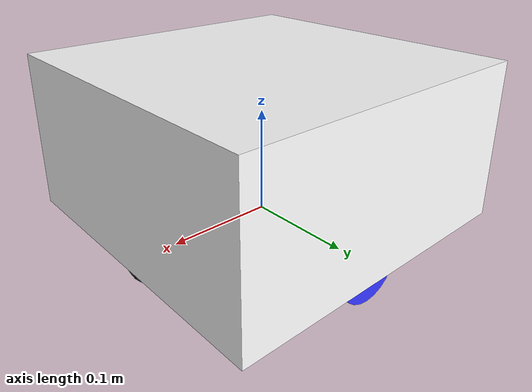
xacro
<?xml version="1.0"?>
<robot xmlns:xacro="http://ros.org/wiki/xacro" name="oogway">

    <xacro:include filename="inertial_macros.xacro"/>

    <material name= "white">
        <color rgba = "1 1 1 1"/>
    </material>

    <material name= "orange">
        <color rgba = "1 0.3 0.1 1"/>
    </material>

    <material name= "blue">
        <color rgba = "0.2 0.2 1 1"/>
    </material>

    <material name= "black">
        <color rgba = "0 0 0 1"/>
    </material>

    <!--BASE LINK-->

    <link name= "base_link">

    </link>

    <!--CHASSIS LINK-->

    <joint name= "chassis_joint" type="fixed">
        <parent link="base_link"/>
        <child link="chassis"/>
        <origin xyz="0 0 0"/>
    </joint>

    <link name= "chassis">
        <visual>
            <origin xyz= "0 0 0.075"/>
            <geometry>
                <box size="0.3 0.3 0.15"/>
            </geometry>
            <material name= "white"/>
        </visual>
        <collision>
            <origin xyz= "0 0 0.075"/>
            <geometry>
                <box size="0.3 0.3 0.15"/>
            </geometry>
        </collision>
        <xacro:inertial_box mass="0.5" x="0.3" y="0.3" z="0.15">
            <origin xyz= "0 0 0.075"/>
        </xacro:inertial_box>
    </link>

    <gazebo reference="chassis">
        <material>Gazebo/White</material>
    </gazebo>

    <!--LEFT WHEEL LINK-->

    <joint name="left_wheel_joint" type="continuous">
        <parent link= "base_link"/>
        <child link="left_wheel"/>
        <origin xyz="0 0.12 0" rpy="-${pi/2} 0 0"/>
        <axis xyz="0 0 1"/>
    </joint>

    <link name="left_wheel">
        <visual>
            <geometry>
                <cylinder radius="0.034" length="0.027"/>
            </geometry>
            <material name= "blue"/>
        </visual>
        <collision>
            <geometry>
                <cylinder radius="0.034" length="0.027"/>
            </geometry>
        </collision>
        <xacro:inertial_cylinder mass="0.1" radius="0.034" length="0.027">
            <origin xyz= "0 0 0" rpy="0 0 0"/>
        </xacro:inertial_cylinder>
    </link>

    <gazebo reference="left_wheel">
        <material>Gazebo/Blue</material>
    </gazebo>

    <!--RIGHT WHEEL LINK-->

    <joint name="right_wheel_joint" type="continuous">
        <parent link= "base_link"/>
        <child link="right_wheel"/>
        <origin xyz="0 -0.12 0" rpy="${pi/2} 0 0"/>
        <axis xyz="0 0 -1"/>
    </joint>

    <link name="right_wheel">
        <visual>
            <geometry>
                <cylinder radius="0.034" length="0.027"/>
            </geometry>
            <material name= "blue"/>
        </visual>
        <collision>
            <geometry>
                <cylinder radius="0.034" length="0.027"/>
            </geometry>
        </collision>
        <xacro:inertial_cylinder mass="0.1" radius="0.034" length="0.027">
            <origin xyz= "0 0 0" rpy="0 0 0"/>
        </xacro:inertial_cylinder>
    </link>

    <gazebo reference="right_wheel">
        <material>Gazebo/Blue</material>
    </gazebo>

    <!--BALL WHEEL LINK-->

    <joint name="ball_wheel_joint_front" type="fixed">
        <parent link="chassis"/>
        <child link="ball_wheel_front"/>
        <origin xyz="0.12 0 0" />
    </joint>

    <joint name="ball_wheel_joint_back" type="fixed">
        <parent link="chassis"/>
        <child link="ball_wheel_back"/>
        <origin xyz="-0.12 0 0" />
    </joint>

    <link name="ball_wheel_front">
        <visual>
            <geometry>
                <sphere radius="0.027"/>
            </geometry>
            <material name="black"/>
        </visual>
        <collision>
            <geometry>
                <sphere radius="0.027"/>
            </geometry>
        </collision>
        <xacro:inertial_sphere mass="0.1" radius="0.027">
            <origin xyz= "0 0 0" rpy="0 0 0"/>
        </xacro:inertial_sphere>
    </link>

    <gazebo reference="ball_wheel_front">
        <material>Gazebo/Black</material>
        <mu1 value="0.001"/>
        <mu2 value="0.001"/>
    </gazebo>

    <link name="ball_wheel_back">
        <visual>
            <geometry>
                <sphere radius="0.027"/>
            </geometry>
            <material name="black"/>
        </visual>
        <collision>
            <geometry>
                <sphere radius="0.027"/>
            </geometry>
        </collision>
        <xacro:inertial_sphere mass="0.1" radius="0.027">
            <origin xyz= "0 0 0" rpy="0 0 0"/>
        </xacro:inertial_sphere>
    </link>

    <gazebo reference="ball_wheel_back">
        <material>Gazebo/Black</material>
        <mu1 value="0.001"/>
        <mu2 value="0.001"/>
    </gazebo>

</robot>
